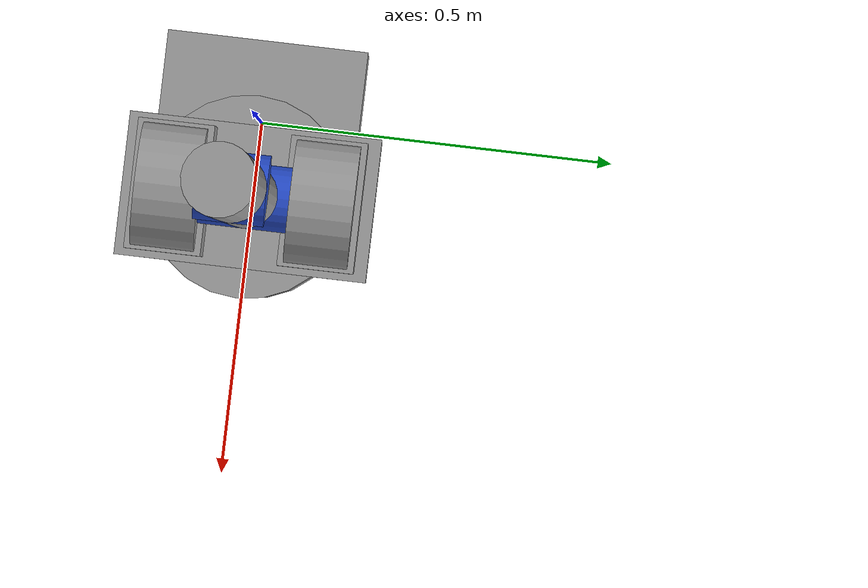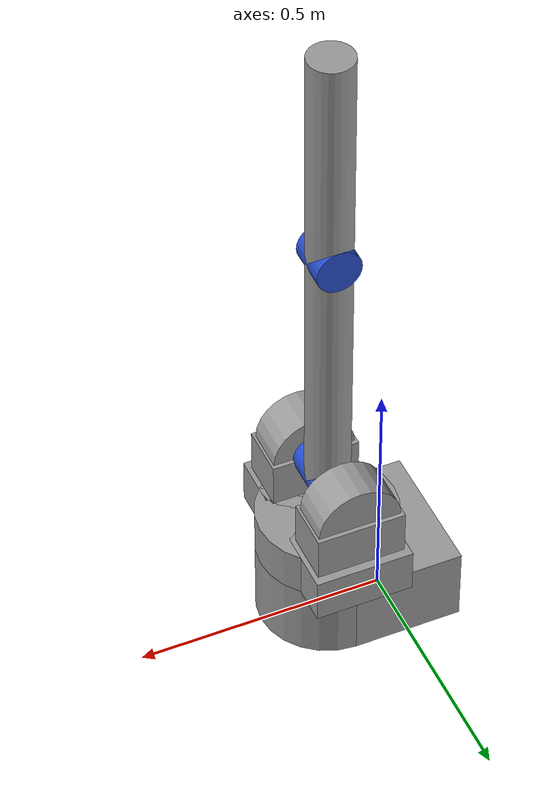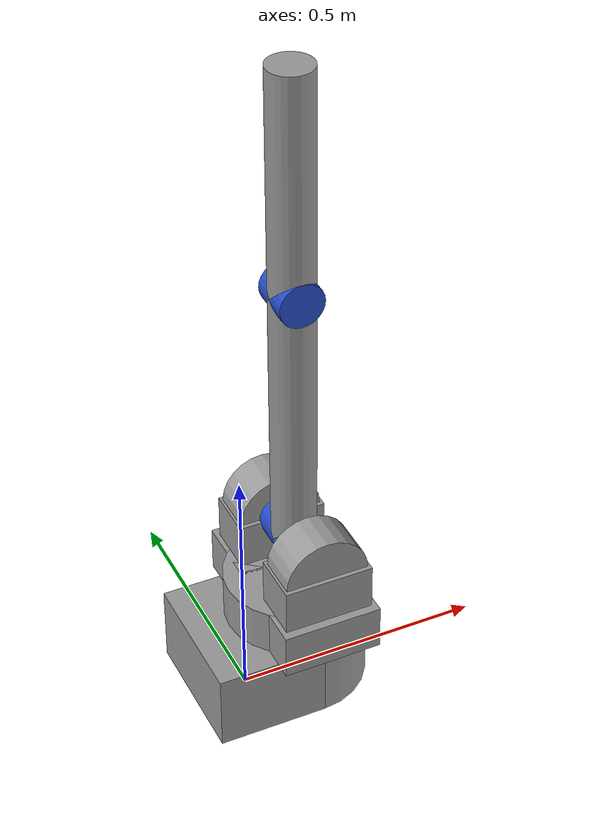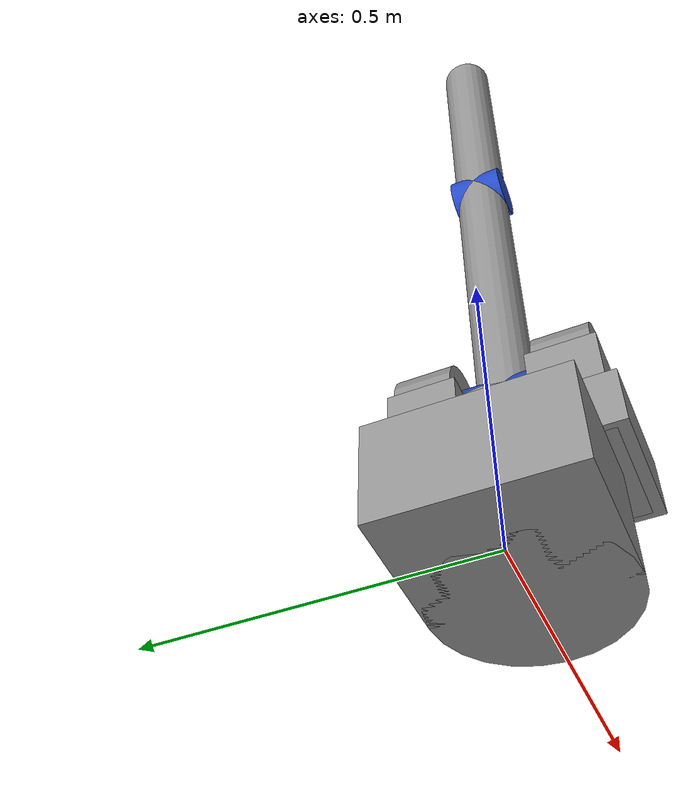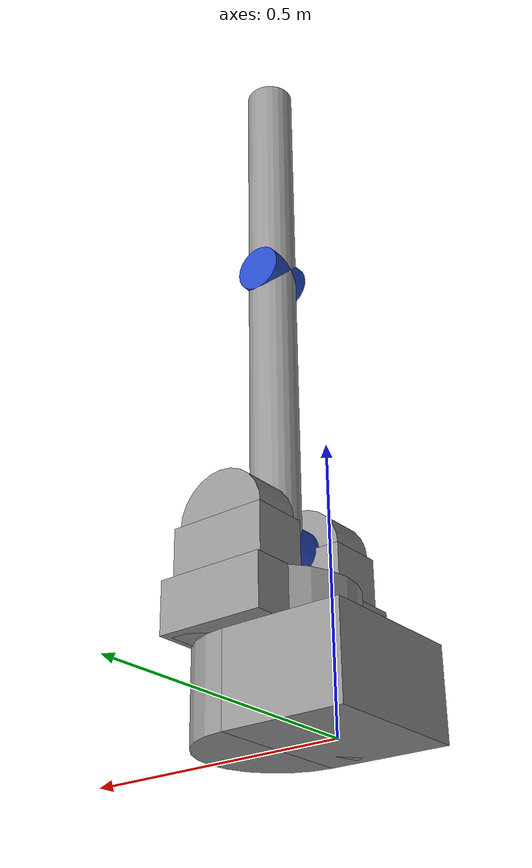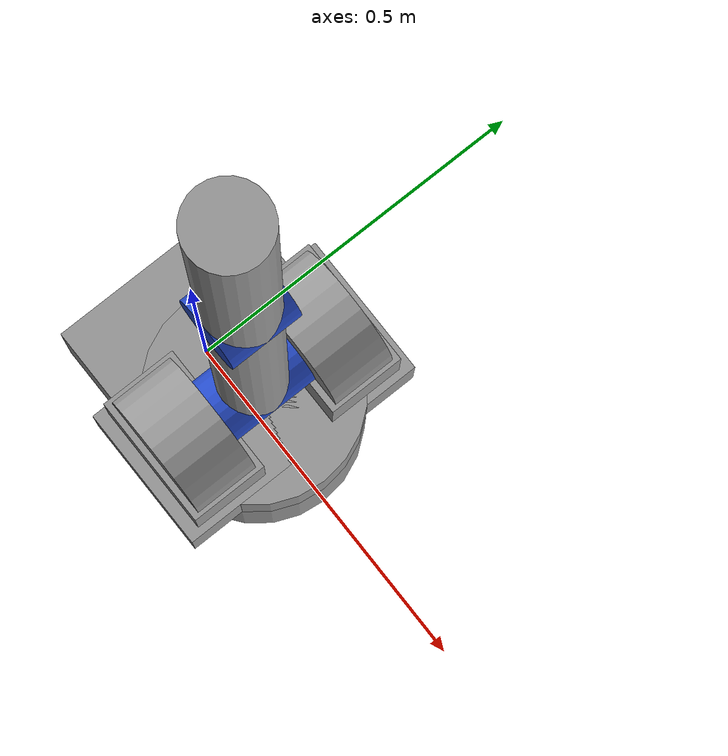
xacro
<?xml version="1.0"?>
<!-- Articulated (Revolute x3) Manipulator -->
<robot name="artbot" xmlns:xacro="http://www.ros.org/wiki/xacro">

  <!-- Constants for robot dimensions (in meters) -->
  <xacro:property name="PI" value="3.1415926535897931"/>
  <xacro:property name="width1" value="0.280" /> <!-- Link 1, the stationary base -->
  <xacro:property name="height1" value="0.160" /> <!-- Link 1 -->
  <xacro:property name="length1" value="0.220" /> <!-- Link 1 -->
  <xacro:property name="width2" value="0.348" /> <!-- Link 2, the rotating "shoulder" -->
  <xacro:property name="height2" value="0.186" /> <!-- Link 2 -->
  <xacro:property name="length2" value="0.198" /> <!-- Link 2 -->
  <xacro:property name="length3" value="0.550" /> <!-- Link 3, the first arm section -->
  <xacro:property name="radius3" value="0.0445" /> <!-- Link 3 -->
  <xacro:property name="length4" value="0.450" /> <!-- Link 4, the second arm section -->
  <xacro:property name="radius4" value="0.0445" /> <!-- Link 4 -->

  <!-- Constants for robot inertias (in kilograms) -->
  <xacro:property name="mass1" value="${8.3936 + 4.8487}" /> <!-- Link 2 -->
  <xacro:property name="mass2" value="${1.7251 + 0.4809}" /> <!-- Link 3 -->
  <xacro:property name="mass3" value="${1.0912 + 2.0824 + 0.3067 + 0.4278 + 0.0557}" /> <!-- Link 4 -->

  <!-- Import all Gazebo-customization elements, including Gazebo colors -->
  <xacro:include filename="$(find artbot_description)/urdf/artbot.gazebo" />
  <!-- Import Rviz colors -->
  <xacro:include filename="$(find artbot_description)/urdf/materials.xacro" />

  <!-- Used for fixing robot to Gazebo 'base_link' -->
  <link name="world"/>

  <joint name="fixed" type="fixed">
    <parent link="world"/>
    <child link="link1"/>
  </joint>

  <!-- Base Link -->
  <link name="link1">
    <collision>
      <origin xyz="0 0 ${height1/2}" rpy="0 0 0"/>
      <geometry>
	<box size="${length1} ${width1} ${height1}"/>
      </geometry>
    </collision>

    <visual>
      <origin xyz="0 0 ${height1/2}" rpy="0 0 0"/>
      <geometry>
	<box size="${length1} ${width1} ${height1}"/>
      </geometry>
      <material name="grey"/>
    </visual>

  <!-- Added visual element at base -->
    <visual>
      <origin xyz="${length1/2} 0 ${height1/2}" rpy="0 0 0"/>
      <geometry>
	<cylinder length="${height1}" radius="${width1/2}"/>
      </geometry>
      <material name="grey"/>
    </visual>

  <!-- Inertial values unimportant for stationary base -->
    <inertial>
      <origin xyz="0 0 ${height1/2}" rpy="0 0 0"/>
      <mass value="1"/>
      <inertia
	  ixx="1.0" ixy="0.0" ixz="0.0"
	  iyy="1.0" iyz="0.0"
	  izz="1.0"/>
    </inertial>
  </link>

  <joint name="joint1" type="continuous">
    <parent link="link1"/>
    <child link="link2"/>
    <origin xyz="${length1/2} 0 ${height1}" rpy="0 0 0"/>
    <axis xyz="0 0 1"/>
    <dynamics damping="0.7"/>
  </joint>

  <!-- Shoulder Link -->
  <link name="link2">
    <collision>
      <origin xyz="0 0 ${height2/4}" rpy="0 0 0"/>
      <geometry>
	<box size="${length2} ${width2} ${height2/2}"/>
      </geometry>
    </collision>

    <visual>
      <origin xyz="0 0 ${height2/4}" rpy="0 0 0"/>
      <geometry>
	<box size="${length2} ${width2} ${height2/2}"/>
      </geometry>
      <material name="grey"/>
    </visual>

  <!-- Added visual elements at shoulder joint -->

  <!-- Shoulder cylinder 1 -->
    <visual>
      <origin xyz="0 ${0.3*width2} ${height2}" rpy="${PI/2} 0 0"/>
      <geometry>
	<cylinder length="${0.25*width2}" radius="${0.9*height2/2}"/>
      </geometry>
      <material name="grey"/>
    </visual>

  <!-- Shoulder rectangle 1 -->
    <visual>
      <origin xyz="0 ${0.3*width2} ${height2/2}" rpy="0 0 0"/>
      <geometry>
	<box size="${0.9*length2} ${0.3*width2} ${height2}"/>
      </geometry>
      <material name="grey"/>
    </visual>

  <!-- Shoulder rotation -->

  <!-- Shoulder cylinder 2 -->
    <visual>
      <origin xyz="0 ${-0.3*width2} ${height2}" rpy="${PI/2} 0 0"/>
      <geometry>
	<cylinder length="${0.25*width2}" radius="${0.9*height2/2}"/>
      </geometry>
      <material name="grey"/>
    </visual>

  <!-- Shoulder rectangle 2 -->
    <visual>
      <origin xyz="0 ${-0.3*width2} ${height2/2}" rpy="0 0 0"/>
      <geometry>
	<box size="${0.9*length2} ${0.3*width2} ${height2}"/>
      </geometry>
      <material name="grey"/>
    </visual>

  <!-- Shoulder base cylinder -->
    <visual>
      <origin xyz="0 0 ${height2/4}" rpy="0 0 0"/>
      <geometry>
	<cylinder length="${height2/2}" radius="${width1/2}"/>
      </geometry>
      <material name="grey"/>
    </visual>

  <!-- Simplified inertia of "shoulder" assuming solid uniform box -->
    <inertial>
      <origin xyz="0 0 ${height2/2}" rpy="0 0 0"/>
      <mass value="${mass1}"/>
      <inertia
	  ixx="${mass1*(height2*height2+width2*width2)/12}" ixy="0.0" ixz="0.0"
	  iyy="${mass1*(height2*height2+length2*length2)/12}" iyz="0.0"
	  izz="${mass1*(length2*length2+width2*width2)/12}"/>
    </inertial>
  </link>

  <joint name="joint2" type="continuous">
    <parent link="link2"/>
    <child link="link3"/>
    <origin xyz="0 0 ${height2}" rpy="0 0 0"/>
    <axis xyz="0 1 0"/>
    <dynamics damping="0.7"/>
  </joint>

  <!-- First Arm Section Link -->
  <link name="link3">
    <collision>
      <origin xyz="0 0 ${length3/2}" rpy="0 0 0"/>
      <geometry>
	<cylinder length="${length3 - 2*radius3}" radius="${radius3}"/>
      </geometry>
    </collision>

    <visual>
      <origin xyz="0 0 ${length3/2}" rpy="0 0 0"/>
      <geometry>
	<cylinder length="${length3}" radius="${radius3}"/>
      </geometry>
      <material name="grey"/>
    </visual>

  <!-- Added visual elements at second joint -->

  <!-- Shoulder rotation -->
    <visual>
      <origin xyz="0 0 0" rpy="${PI/2} 0 0"/>
      <geometry>
	<cylinder length="${0.5*width2}" radius="${radius3}"/>
      </geometry>
      <material name="blue"/>
    </visual>

  <!-- Simplified inertia of first arm cylinder, assuming a narrow rod -->
    <inertial>
      <origin xyz="0 0 ${length3/2}" rpy="0 0 0"/>
      <mass value="${mass2}"/>
      <inertia
	  ixx="${mass2*length3*length3/12}" ixy="0.0" ixz="0.0"
	  iyy="0.0" iyz="0.0"
	  izz="${mass2*length3*length3/12}"/>
    </inertial>
  </link>

  <joint name="joint3" type="continuous">
    <parent link="link3"/>
    <child link="link4"/>
    <origin xyz="0 0 ${length3}" rpy="0 0 0"/>
    <axis xyz="0 1 0"/>
    <dynamics damping="0.7"/>
  </joint>

  <!-- Second Arm Section Link -->
  <link name="link4">
    <collision>
      <origin xyz="0 0 ${length4/2}" rpy="0 0 0"/>
      <geometry>
	<cylinder length="${length4 - 2*radius4}" radius="${radius4}"/>
      </geometry>
    </collision>

    <visual>
      <origin xyz="0 0 ${length4/2}" rpy="0 0 0"/>
      <geometry>
	<cylinder length="${length4}" radius="${radius4}"/>
      </geometry>
      <material name="grey"/>
    </visual>

  <!-- Added visual elements at third joint -->

  <!-- Shoulder rotation -->
    <visual>
      <origin xyz="0 0 0" rpy="${PI/2} 0 0"/>
      <geometry>
	<cylinder length="${2*radius4}" radius="${radius4}"/>
      </geometry>
      <material name="blue"/>
    </visual>

  <!-- Simplified inertia of second arm cylinder, assuming a narrow rod -->
    <inertial>
      <origin xyz="0 0 ${length4/2}" rpy="0 0 0"/>
      <mass value="${mass3}"/>
      <inertia
	  ixx="${mass3*length4*length4/12}" ixy="0.0" ixz="0.0"
	  iyy="1.0" iyz="0.0"
	  izz="${mass3*length4*length4/12}"/>
    </inertial>
  </link>

  <transmission name="tran1">
    <type>transmission_interface/SimpleTransmission</type>
    <joint name="joint1">
      <hardwareInterface>EffortJointInterface</hardwareInterface>
    </joint>
    <actuator name="motor1">
      <hardwareInterface>EffortJointInterface</hardwareInterface>
      <mechanicalReduction>1</mechanicalReduction>
    </actuator>
  </transmission>

  <transmission name="tran2">
    <type>transmission_interface/SimpleTransmission</type>
    <joint name="joint2">
      <hardwareInterface>EffortJointInterface</hardwareInterface>
    </joint>
    <actuator name="motor2">
      <hardwareInterface>EffortJointInterface</hardwareInterface>
      <mechanicalReduction>1</mechanicalReduction>
    </actuator>
  </transmission>

  <transmission name="tran3">
    <type>transmission_interface/SimpleTransmission</type>
    <joint name="joint3">
      <hardwareInterface>EffortJointInterface</hardwareInterface>
    </joint>
    <actuator name="motor3">
      <hardwareInterface>EffortJointInterface</hardwareInterface>
      <mechanicalReduction>1</mechanicalReduction>
    </actuator>
  </transmission>

</robot>
